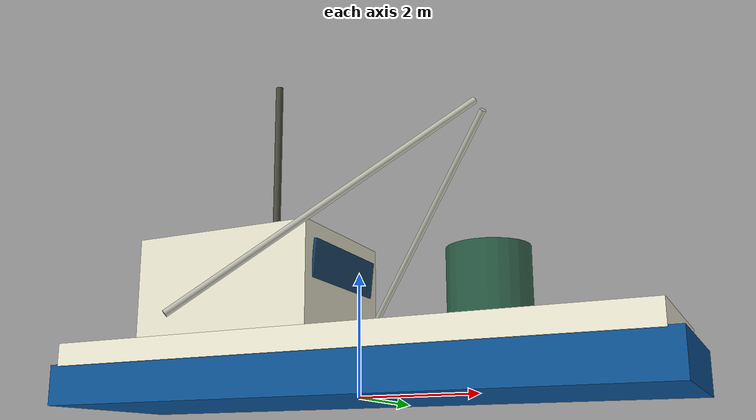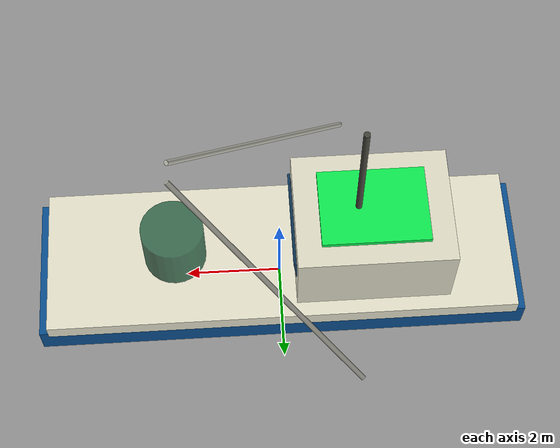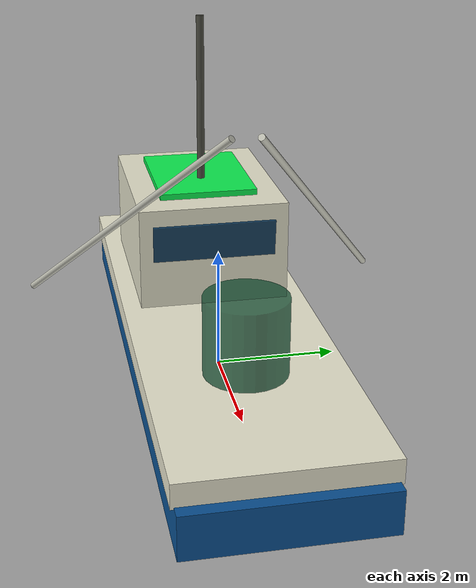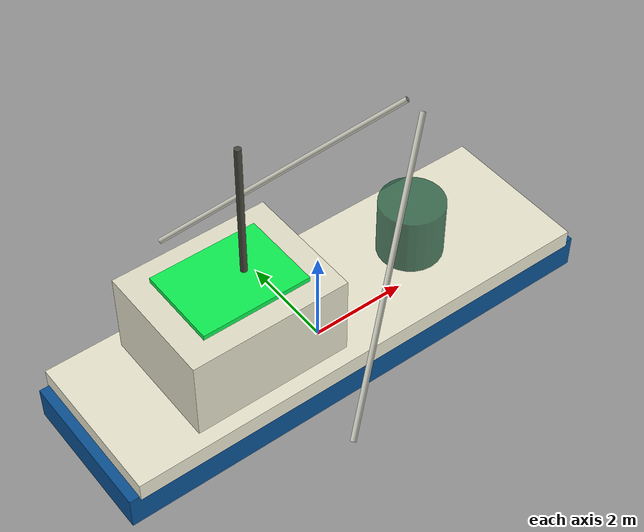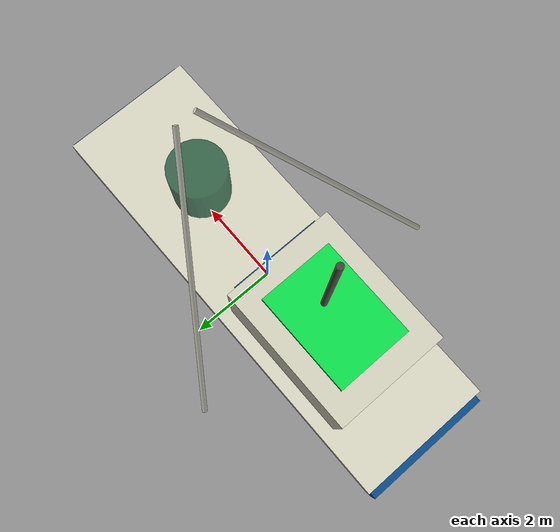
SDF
<?xml version="1.0"?>
<sdf version="1.10"><model name="fishing_boat"><pose>0 0 0.48 0 0 0</pose><link name="hull">
  <enable_wind>true</enable_wind><inertial><mass>420</mass><inertia><ixx>360</ixx><iyy>2100</iyy><izz>2250</izz></inertia></inertial>
  <collision name="hull_collision"><geometry><box><size>10.5 3.2 1</size></box></geometry></collision>
  <visual name="blue_hull"><pose>0 0 -0.2 0 0 0</pose><geometry><box><size>10.2 3 0.68</size></box></geometry><material><ambient>0.025 0.16 0.3 1</ambient><diffuse>0.04 0.32 0.58 1</diffuse><specular>0.14 0.2 0.25 1</specular></material></visual>
  <visual name="white_freeboard"><pose>0 0 0.3 0 0 0</pose><geometry><box><size>9.8 3.1 0.38</size></box></geometry><material><ambient>0.76 0.75 0.68 1</ambient><diffuse>0.92 0.91 0.82 1</diffuse></material></visual>
  <visual name="wheelhouse"><pose>-1.9 0 1.35 0 0 0</pose><geometry><box><size>3.2 2.5 1.7</size></box></geometry><material><ambient>0.74 0.73 0.66 1</ambient><diffuse>0.9 0.89 0.8 1</diffuse></material></visual>
  <visual name="window"><pose>-0.28 0 1.62 0 0.1 0</pose><geometry><box><size>0.05 2.05 0.62</size></box></geometry><material><ambient>0.015 0.08 0.13 0.85</ambient><diffuse>0.025 0.22 0.38 0.85</diffuse><specular>0.8 0.9 1 1</specular></material></visual>
  <visual name="neutral_identity_roof"><pose>-1.9 0 2.24 0 0 0</pose><geometry><box><size>2.2 1.65 0.12</size></box></geometry><material><ambient>0.04 0.72 0.25 1</ambient><diffuse>0.05 0.95 0.32 1</diffuse><emissive>0.01 0.18 0.05 1</emissive></material></visual>
  <visual name="mast"><pose>-1.6 0 3.5 0 0 0</pose><geometry><cylinder><radius>0.065</radius><length>3.2</length></cylinder></geometry><material><ambient>0.15 0.15 0.13 1</ambient><diffuse>0.28 0.28 0.24 1</diffuse></material></visual>
  <visual name="port_outrigger"><pose>0.3 1.6 2.3 0.5 0.8 0</pose><geometry><cylinder><radius>0.055</radius><length>5.8</length></cylinder></geometry><material><ambient>0.55 0.55 0.5 1</ambient><diffuse>0.75 0.75 0.7 1</diffuse></material></visual>
  <visual name="starboard_outrigger"><pose>0.3 -1.6 2.3 -0.5 0.8 0</pose><geometry><cylinder><radius>0.055</radius><length>5.8</length></cylinder></geometry><material><ambient>0.55 0.55 0.5 1</ambient><diffuse>0.75 0.75 0.7 1</diffuse></material></visual>
  <visual name="net_bundle"><pose>2.2 0 0.82 0 0 0</pose><geometry><cylinder><radius>0.65</radius><length>1.8</length></cylinder></geometry><material><ambient>0.04 0.18 0.12 0.75</ambient><diffuse>0.06 0.32 0.2 0.75</diffuse></material></visual>
  <light name="work_light" type="point"><pose>0 0 3.4 0 0 0</pose><cast_shadows>false</cast_shadows><intensity>1.2</intensity><diffuse>1 0.9 0.55 1</diffuse><attenuation><range>28</range><constant>0.8</constant><linear>0.04</linear><quadratic>0.002</quadratic></attenuation></light>
  <particle_emitter name="foam_wake" type="box"><pose>-5.6 0 -0.18 0 -1.5708 0</pose><emitting>true</emitting><size>0.2 1.9 0.25</size><particle_size>0.3 0.3 0.07</particle_size><lifetime>4</lifetime><min_velocity>0.55</min_velocity><max_velocity>1</max_velocity><scale_rate>0.58</scale_rate><rate>28</rate><color_start>0.88 0.96 1 0.7</color_start><color_end>0.72 0.88 0.95 0</color_end><particle_scatter_ratio>0.12</particle_scatter_ratio></particle_emitter>
  </link>
  <plugin filename="gz-sim-velocity-control-system" name="gz::sim::systems::VelocityControl"><initial_linear>0.82 0 0</initial_linear><initial_angular>0 0 -0.009</initial_angular><topic>/model/fishing_boat/cmd_vel</topic></plugin>
  <plugin filename="libBoatWaveFollower.so" name="gz::sim::systems::BoatWaveFollower"><mean_z>0.52</mean_z><heave_amplitude>0.09</heave_amplitude><roll_amplitude>0.05</roll_amplitude><pitch_amplitude>0.04</pitch_amplitude><primary_frequency>1</primary_frequency><secondary_frequency>1.55</secondary_frequency></plugin>
  </model></sdf>
